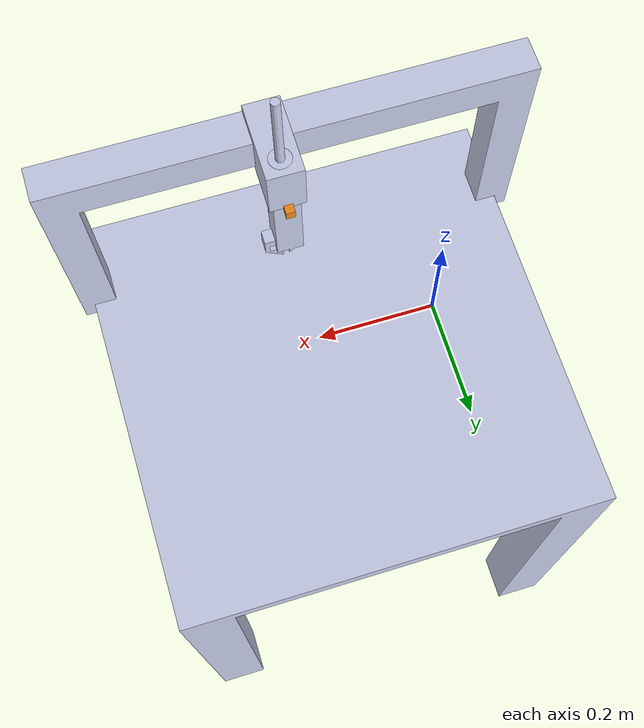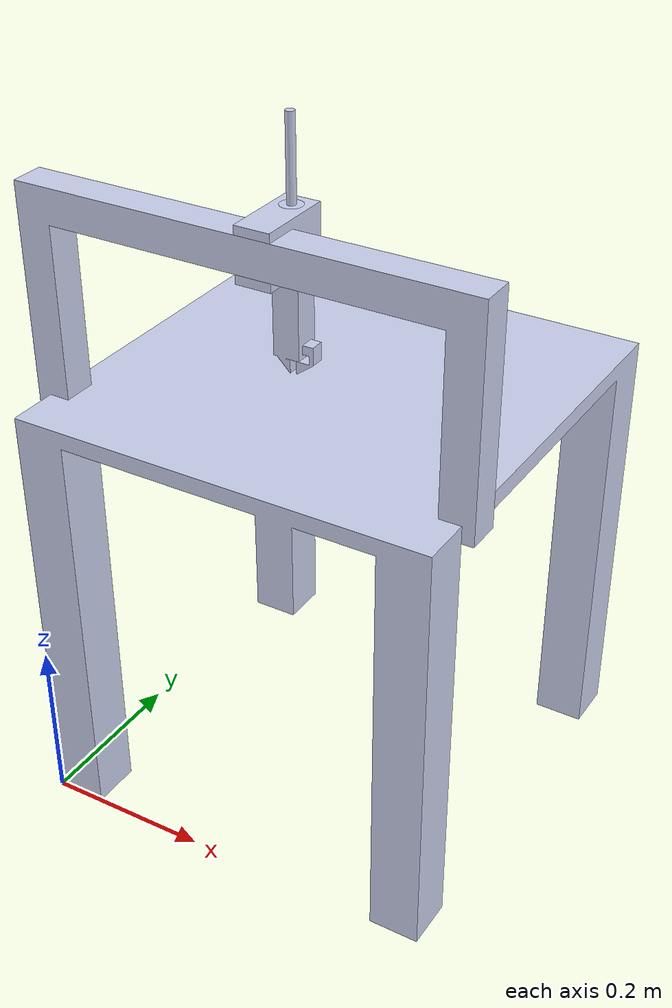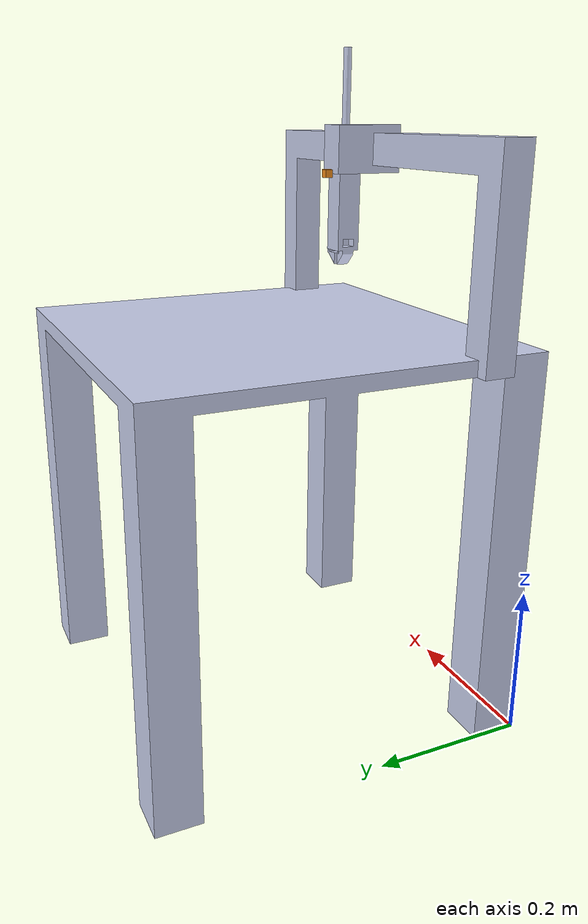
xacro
<?xml version="1.0"?>

<robot  xmlns:xacro="http://www.ros.org/wiki/xacro" name="rrbot">

<link name="base_link">
    <inertial>
      <origin
        xyz="0.249025149842267 0.288536369831321 0.424095630505477"
        rpy="0 0 0" />
      <mass
        value="1200.2" />
      <inertia
        ixx="0"
        ixy="0"
        ixz="0"
        iyy="0"
        iyz="0"
        izz="0" />
    </inertial>
    <visual>
      <origin
        xyz="0 0 0"
        rpy="0 0 0" />
      <geometry>
        <mesh
          filename="package://robot_sim/meshes/base_link.STL" />
      </geometry>
      <material
        name="">
        <color
          rgba="0.792156862745098 0.819607843137255 0.933333333333333 1" />
      </material>
    </visual>
    <collision>
      <origin
        xyz="0 0 0"
        rpy="0 0 0" />
      <geometry>
        <mesh
          filename="package://robot_sim/meshes/base_link.STL" />
      </geometry>
    </collision>
  </link>

<link
    name="p1">
    <inertial>
      <origin
        xyz="1.38777878078145E-16 0.185555555555556 0.0200000000000001"
        rpy="0 0 0" />
      <mass
        value="1.512" />
      <inertia
        ixx="0"
        ixy="0"
        ixz="0"
        iyy="0"
        iyz="0"
        izz="0" />
    </inertial>
    <visual>
      <origin
        xyz="0 0 0"
        rpy="0 0 0" />
      <geometry>
        <mesh
          filename="package://robot_sim/meshes/p1.STL" />
      </geometry>
      <material
        name="">
        <color
          rgba="0.792156862745098 0.819607843137255 0.933333333333333 1" />
      </material>
    </visual>
    <collision>
      <origin
        xyz="0 0 0"
        rpy="0 0 0" />
      <geometry>
        <mesh
          filename="package://robot_sim/meshes/p1.STL" />
      </geometry>
    </collision>
  </link>

<joint  name="j1"   type="prismatic">

    <origin
      xyz="0.249025149842267 0.1 0.50"
      rpy="0 0 0" />
    <parent
      link="base_link" />
    <child
      link="p1" />
    <axis
      xyz="0 1 0" />
      <limit effort="1000.0" lower="-0.05" upper=".4" velocity="0.5"/>
  </joint>

<link    name="p2">
    <inertial>
      <origin
        xyz="-0.02 0.03 0.052047787481715"
        rpy="0 0 0" />
      <mass
        value="0.122547568872596" />
      <inertia
        ixx="0"
        ixy="0"
        ixz="0"
        iyy="0"
        iyz="0"
        izz="0" />
    </inertial>
    <visual>
      <origin
        xyz="0 0 0"
        rpy="0 0 0" />
      <geometry>
        <mesh
          filename="package://robot_sim/meshes/p2.STL" />
      </geometry>
      <material
        name="">
        <color
          rgba="0.792156862745098 0.819607843137255 0.933333333333333 1" />
      </material>
    </visual>
    <collision>
      <origin
        xyz="0 0 0"
        rpy="0 0 0" />
      <geometry>
        <mesh
          filename="package://robot_sim/meshes/p2.STL" />
      </geometry>
    </collision>
  </link>

<link name="camera_link">
      <visual>
        <origin xyz="0 0 0" rpy="0 0 0"/>
        <geometry>
      <box size="0.01 0.01 0.01"/>
        </geometry>
        <material name="orange"/>
      </visual>

      <inertial>
        <mass value="1e-5" />
        <origin xyz="0 0 0" rpy="0 0 0"/>
        <inertia ixx="1e-6" ixy="0" ixz="0" iyy="1e-6" iyz="0" izz="1e-6" />
      </inertial>
</link>

<joint    name="j2"    type="prismatic">
    <origin
      xyz="-0.0 -0.04 0.21"
      rpy="0 0 3.1415" />
    <parent
      link="p1" />
    <child
      link="p2" />
    <axis
      xyz="1 0 0" />
      <limit effort="1000.0" lower="-0.23" upper="0.27" velocity="0.5"/>
  </joint>

<joint name="camare_joints" type="prismatic">
   <parent link="p2"/>
   <child link="camera_link"/>
   <limit effort="1000.0" lower="0.0" upper="0.0001" velocity="0.5"/>
   <origin rpy="0 1.57 0" xyz="-0.02 -0.095 0"/>
   <axis xyz="0 0 -1" />
</joint>

<!--bolbring -->
<link    name="p3">
    <inertial>
      <origin
        xyz="0 -0.0310687231692988 0.000105308099467155"
        rpy="0 0 0" />
      <mass
        value="0.161431077818511" />
      <inertia
        ixx="0"
        ixy="0"
        ixz="0"
        iyy="0"
        iyz="0"
        izz="0" />
    </inertial>
    <visual>
      <origin
        xyz="0.04 0 0"
        rpy="0 0 1.57" />
      <geometry>
        <mesh
          filename="package://robot_sim/meshes/p3.STL" />
      </geometry>
      <material
        name="">
        <color
          rgba="0.792156862745098 0.819607843137255 0.933333333333333 1" />
      </material>
    </visual>
    <collision>
      <origin
        xyz="0 0 0"
        rpy="0 0 0" />
      <geometry>
        <mesh
          filename="package://robot_sim/meshes/p3.STL" />
      </geometry>
    </collision>
  </link>

<!--bolbring end -->
<joint name="j3"   type="continuous">
    <origin
      xyz="-0.02 -0.07 0.04"
      rpy="0 1.57 0" />
    <parent
      link="p2" />
    <child
      link="p3" />
    <axis
      xyz="1 0 0" />
  </joint>

<link   name="p4">
    <inertial>
      <origin
        xyz="0.0137795085596931 -0.002 0.00800000000000012"
        rpy="0 0 0" />
      <mass
        value="2" />
      <inertia
        ixx="0"
        ixy="0"
        ixz="0"
        iyy="0"
        iyz="0"
        izz="0" />
    </inertial>
    <visual>
      <origin
        xyz="0 0 0"
        rpy="0 0 0" />
      <geometry>
        <mesh
          filename="package://robot_sim/meshes/p4.STL" />
      </geometry>
      <material
        name="">
        <color
          rgba="0.792156862745098 0.819607843137255 0.933333333333333 1" />
      </material>
    </visual>
    <collision>
      <origin
        xyz="0 0 0"
        rpy="0 0 0" />
      <geometry>
        <mesh
          filename="package://robot_sim/meshes/p4.STL" />
      </geometry>
    </collision>
  </link>

<joint    name="j4"    type="prismatic">
    <origin
      xyz="0 0 0"
      rpy="0 0 1.57" />
    <parent
      link="p3" />
    <child
      link="p4" />
    <axis
      xyz="0 -1 0" />
      <limit effort="1000.0" lower="-0.006" upper="0.066" velocity="0.5"/>
  </joint>

<link   name="p5">
    <inertial>
      <origin
        xyz="0.0137795085596931 -0.002 0.00800000000000012"
        rpy="0 0 0" />
      <mass
        value="1" />
      <inertia
        ixx="0"
        ixy="0"
        ixz="0"
        iyy="0"
        iyz="0"
        izz="0" />
    </inertial>
    <visual>
      <origin
        xyz="0 0 0"
        rpy="0 0 0" />
      <geometry>
        <mesh
          filename="package://robot_sim/meshes/p5.STL" />
      </geometry>
      <material
        name="">
        <color
          rgba="0.792156862745098 0.819607843137255 0.933333333333333 1" />
      </material>
    </visual>
    <collision>
      <origin
        xyz="0 0 0"
        rpy="0 0 0" />
      <geometry>
        <mesh
          filename="package://robot_sim/meshes/p5.STL" />
      </geometry>
    </collision>
  </link>

<joint    name="j5"    type="prismatic">
    <origin
      xyz="-0.0085 -0.1332 0"
      rpy="0 1.57 0" />
    <parent
      link="p4" />
    <child
      link="p5" />
    <axis
      xyz="-1 0 0" />
      <limit effort="10.0" lower="-0.02" upper="0.01" velocity="0.5"/>
  </joint>

<transmission name="tran1">
    <type>transmission_interface/SimpleTransmission</type>
    <joint name="j1">
      <hardwareInterface>hardware_interface/EffortJointInterface</hardwareInterface>
    </joint>
    <actuator name="motor1">
      <hardwareInterface>hardware_interface/EffortJointInterface</hardwareInterface>
      <mechanicalReduction>1</mechanicalReduction>
    </actuator>
  </transmission>

 <transmission name="tran2">
     <type>transmission_interface/SimpleTransmission</type>
     <joint name="j2">
       <hardwareInterface>hardware_interface/EffortJointInterface</hardwareInterface>
     </joint>
     <actuator name="motor2">
       <hardwareInterface>hardware_interface/EffortJointInterface</hardwareInterface>
       <mechanicalReduction>1</mechanicalReduction>
     </actuator>
   </transmission>

<transmission name="tran3">
    <type>transmission_interface/SimpleTransmission</type>
    <joint name="j3">
      <hardwareInterface>hardware_interface/EffortJointInterface</hardwareInterface>
    </joint>
    <actuator name="motor3">
      <hardwareInterface>hardware_interface/EffortJointInterface</hardwareInterface>
      <mechanicalReduction>1</mechanicalReduction>
    </actuator>
  </transmission>

<transmission name="tran4">
    <type>transmission_interface/SimpleTransmission</type>
    <joint name="j4">
      <hardwareInterface>hardware_interface/EffortJointInterface</hardwareInterface>
    </joint>
    <actuator name="motor4">
      <hardwareInterface>hardware_interface/EffortJointInterface</hardwareInterface>
      <mechanicalReduction>1</mechanicalReduction>
    </actuator>
  </transmission>

<transmission name="tran5">
      <type>transmission_interface/SimpleTransmission</type>
      <joint name="j5">
        <hardwareInterface>hardware_interface/EffortJointInterface</hardwareInterface>
      </joint>
      <actuator name="motor5">
        <hardwareInterface>hardware_interface/EffortJointInterface</hardwareInterface>
        <mechanicalReduction>1</mechanicalReduction>
      </actuator>
    </transmission>

  <!-- Gazebo plugin for ROS Control -->
  <gazebo>
    <plugin name="gazebo_ros_control" filename="libgazebo_ros_control.so">
      <robotNamespace>/rrbot</robotNamespace>
    </plugin>
</gazebo>

<gazebo reference="camera_link">
  <sensor type="camera" name="camera1">
    <update_rate>30.0</update_rate>
    <camera name="head">
      <horizontal_fov>1.3962634</horizontal_fov>
      <image>
        <width>800</width>
        <height>800</height>
        <format>R8G8B8</format>
      </image>
      <clip>
        <near>0.02</near>
        <far>300</far>
      </clip>
      <noise>
        <type>gaussian</type>
        <!-- Noise is sampled independently per pixel on each frame.
             That pixel's noise value is added to each of its color
             channels, which at that point lie in the range [0,1]. -->
        <mean>0.0</mean>
        <stddev>0.007</stddev>
      </noise>
    </camera>
    <plugin name="camera_controller" filename="libgazebo_ros_camera.so">
      <alwaysOn>true</alwaysOn>
      <updateRate>0.0</updateRate>
      <cameraName>rrbot/camera1</cameraName>
      <imageTopicName>image_raw</imageTopicName>
      <cameraInfoTopicName>camera_info</cameraInfoTopicName>
      <frameName>camera_link</frameName>
      <hackBaseline>0.07</hackBaseline>
      <distortionK1>0.0</distortionK1>
      <distortionK2>0.0</distortionK2>
      <distortionK3>0.0</distortionK3>
      <distortionT1>0.0</distortionT1>
      <distortionT2>0.0</distortionT2>
    </plugin>
  </sensor>
</gazebo>

<gazebo reference="base_link">
<collision name="base_link_collision">
<surface>
  <friction>
    <ode>
      <mu>1.0</mu>
      <mu2>1.0</mu2>
      <fdir1>0 0 0</fdir1>
      <slip1>0</slip1>
      <slip2>0</slip2>
    </ode>
    <torsional>
      <coefficient>1</coefficient>
      <patch_radius>0</patch_radius>
      <surface_radius>0</surface_radius>
      <use_patch_radius>1</use_patch_radius>
      <ode>
        <slip>0</slip>
      </ode>
    </torsional>
  </friction>
  <bounce>
    <restitution_coefficient>0</restitution_coefficient>
    <threshold>1e+06</threshold>
  </bounce>
  <contact>
    <collide_without_contact>0</collide_without_contact>
    <collide_without_contact_bitmask>1</collide_without_contact_bitmask>
    <collide_bitmask>1</collide_bitmask>
    <ode>
      <soft_cfm>0</soft_cfm>
      <soft_erp>0.2</soft_erp>
      <kp>1e+10</kp>
      <kd>1</kd>
      <max_vel>0.1</max_vel>
      <min_depth>0.001</min_depth>
    </ode>
    <bullet>
      <split_impulse>1</split_impulse>
      <split_impulse_penetration_threshold>-0.01</split_impulse_penetration_threshold>
      <soft_cfm>0</soft_cfm>
      <soft_erp>0.2</soft_erp>
      <kp>1e+7</kp>
      <kd>1.0</kd>
    </bullet>
  </contact>
</surface>
   </collision>
    <material>Gazebo/White</material>

</gazebo>

<gazebo reference="p1">
<collision name="p1_collision">
<surface>
  <friction>
    <ode>
      <mu>1.0</mu>
      <mu2>1.0</mu2>
      <fdir1>0 0 0</fdir1>
      <slip1>0</slip1>
      <slip2>0</slip2>
    </ode>
    <torsional>
      <coefficient>1</coefficient>
      <patch_radius>0</patch_radius>
      <surface_radius>0</surface_radius>
      <use_patch_radius>1</use_patch_radius>
      <ode>
        <slip>0</slip>
      </ode>
    </torsional>
  </friction>
  <bounce>
    <restitution_coefficient>0</restitution_coefficient>
    <threshold>1e+06</threshold>
  </bounce>
  <contact>
    <collide_without_contact>0</collide_without_contact>
    <collide_without_contact_bitmask>1</collide_without_contact_bitmask>
    <collide_bitmask>1</collide_bitmask>
    <ode>
      <soft_cfm>0</soft_cfm>
      <soft_erp>0.2</soft_erp>
      <kp>1e+10</kp>
      <kd>1</kd>
      <max_vel>0.1</max_vel>
      <min_depth>0.001</min_depth>
    </ode>
    <bullet>
      <split_impulse>1</split_impulse>
      <split_impulse_penetration_threshold>-0.01</split_impulse_penetration_threshold>
      <soft_cfm>0</soft_cfm>
      <soft_erp>0.2</soft_erp>
      <kp>1e+7</kp>
      <kd>1.0</kd>
    </bullet>
  </contact>
</surface>
   </collision>
    <material>Gazebo/Orange</material>
</gazebo>
<gazebo reference="p2">
<collision name="p2_collision">
<surface>
  <friction>
    <ode>
      <mu>1.0</mu>
      <mu2>1.0</mu2>
      <fdir1>0 0 0</fdir1>
      <slip1>0</slip1>
      <slip2>0</slip2>
    </ode>
    <torsional>
      <coefficient>1</coefficient>
      <patch_radius>0</patch_radius>
      <surface_radius>0</surface_radius>
      <use_patch_radius>1</use_patch_radius>
      <ode>
        <slip>0</slip>
      </ode>
    </torsional>
  </friction>
  <bounce>
    <restitution_coefficient>0</restitution_coefficient>
    <threshold>1e+06</threshold>
  </bounce>
  <contact>
    <collide_without_contact>0</collide_without_contact>
    <collide_without_contact_bitmask>1</collide_without_contact_bitmask>
    <collide_bitmask>1</collide_bitmask>
    <ode>
      <soft_cfm>0</soft_cfm>
      <soft_erp>0.2</soft_erp>
      <kp>1e+10</kp>
      <kd>1</kd>
      <max_vel>0.1</max_vel>
      <min_depth>0.001</min_depth>
    </ode>
    <bullet>
      <split_impulse>1</split_impulse>
      <split_impulse_penetration_threshold>-0.01</split_impulse_penetration_threshold>
      <soft_cfm>0</soft_cfm>
      <soft_erp>0.2</soft_erp>
      <kp>1e+7</kp>
      <kd>1.0</kd>
    </bullet>
  </contact>
</surface>
   </collision>
    <material>Gazebo/Blue</material>
</gazebo>
<gazebo reference="p3">
<collision name="p3_collision">
<surface>
  <friction>
    <ode>
      <mu>1.0</mu>
      <mu2>1.0</mu2>
      <fdir1>0 0 0</fdir1>
      <slip1>0</slip1>
      <slip2>0</slip2>
    </ode>
    <torsional>
      <coefficient>1</coefficient>
      <patch_radius>0</patch_radius>
      <surface_radius>0</surface_radius>
      <use_patch_radius>1</use_patch_radius>
      <ode>
        <slip>0</slip>
      </ode>
    </torsional>
  </friction>
  <bounce>
    <restitution_coefficient>0</restitution_coefficient>
    <threshold>1e+06</threshold>
  </bounce>
  <contact>
    <collide_without_contact>0</collide_without_contact>
    <collide_without_contact_bitmask>1</collide_without_contact_bitmask>
    <collide_bitmask>1</collide_bitmask>
    <ode>
      <soft_cfm>0</soft_cfm>
      <soft_erp>0.2</soft_erp>
      <kp>1e+10</kp>
      <kd>1</kd>
      <max_vel>0.1</max_vel>
      <min_depth>0.001</min_depth>
    </ode>
    <bullet>
      <split_impulse>1</split_impulse>
      <split_impulse_penetration_threshold>-0.01</split_impulse_penetration_threshold>
      <soft_cfm>0</soft_cfm>
      <soft_erp>0.2</soft_erp>
      <kp>1e+7</kp>
      <kd>1.0</kd>
    </bullet>
  </contact>
</surface>
   </collision>
    <material>Gazebo/Yellow</material>
</gazebo>
<gazebo reference="p4">
<collision name="p4_collision">
<surface>
  <friction>
    <ode>
      <mu>1.0</mu>
      <mu2>1.0</mu2>
      <fdir1>0 0 0</fdir1>
      <slip1>0</slip1>
      <slip2>0</slip2>
    </ode>
    <torsional>
      <coefficient>1</coefficient>
      <patch_radius>0</patch_radius>
      <surface_radius>0</surface_radius>
      <use_patch_radius>1</use_patch_radius>
      <ode>
        <slip>0</slip>
      </ode>
    </torsional>
  </friction>
  <bounce>
    <restitution_coefficient>0</restitution_coefficient>
    <threshold>1e+06</threshold>
  </bounce>
  <contact>
    <collide_without_contact>0</collide_without_contact>
    <collide_without_contact_bitmask>1</collide_without_contact_bitmask>
    <collide_bitmask>1</collide_bitmask>
    <ode>
      <soft_cfm>0</soft_cfm>
      <soft_erp>0.2</soft_erp>
      <kp>1e+10</kp>
      <kd>1</kd>
      <max_vel>0.1</max_vel>
      <min_depth>0.001</min_depth>
    </ode>
    <bullet>
      <split_impulse>1</split_impulse>
      <split_impulse_penetration_threshold>-0.01</split_impulse_penetration_threshold>
      <soft_cfm>0</soft_cfm>
      <soft_erp>0.2</soft_erp>
      <kp>1e+7</kp>
      <kd>1.0</kd>
    </bullet>
  </contact>
</surface>
   </collision>
<material>Gazebo/Purple</material>

</gazebo>
<gazebo reference="p5">
<collision name="p5_collision">
<surface>
  <friction>
    <ode>
      <mu>1.0</mu>
      <mu2>1.0</mu2>
      <fdir1>0 0 0</fdir1>
      <slip1>0</slip1>
      <slip2>0</slip2>
    </ode>
    <torsional>
      <coefficient>1</coefficient>
      <patch_radius>0</patch_radius>
      <surface_radius>0</surface_radius>
      <use_patch_radius>1</use_patch_radius>
      <ode>
        <slip>0</slip>
      </ode>
    </torsional>
  </friction>
  <bounce>
    <restitution_coefficient>0</restitution_coefficient>
    <threshold>1e+06</threshold>
  </bounce>
  <contact>
    <collide_without_contact>0</collide_without_contact>
    <collide_without_contact_bitmask>1</collide_without_contact_bitmask>
    <collide_bitmask>1</collide_bitmask>
    <ode>
      <soft_cfm>0</soft_cfm>
      <soft_erp>0.2</soft_erp>
      <kp>1e+10</kp>
      <kd>1</kd>
      <max_vel>0.1</max_vel>
      <min_depth>0.001</min_depth>
    </ode>
    <bullet>
      <split_impulse>1</split_impulse>
      <split_impulse_penetration_threshold>-0.01</split_impulse_penetration_threshold>
      <soft_cfm>0</soft_cfm>
      <soft_erp>0.2</soft_erp>
      <kp>1e+7</kp>
      <kd>1.0</kd>
    </bullet>
  </contact>
</surface>
   </collision>
    <material>Gazebo/Red</material>

</gazebo>
</robot>
